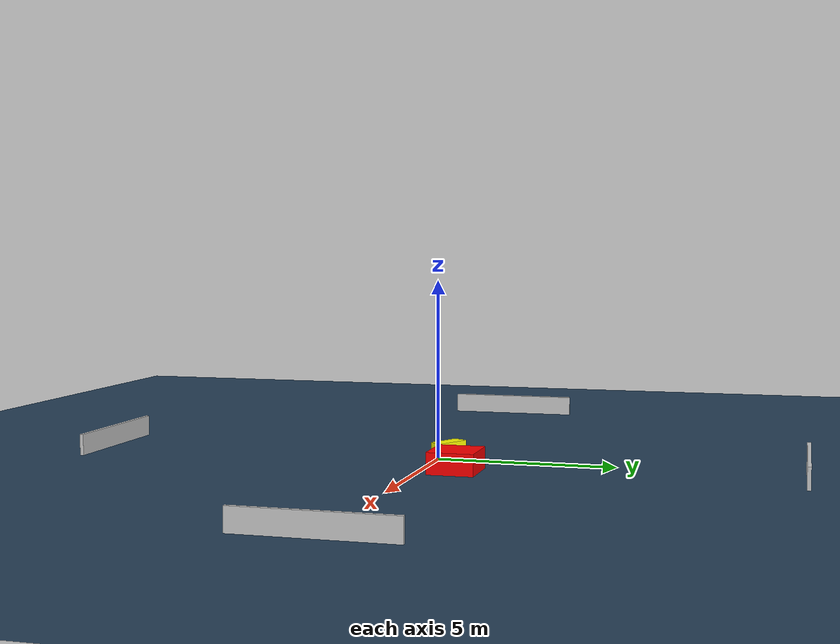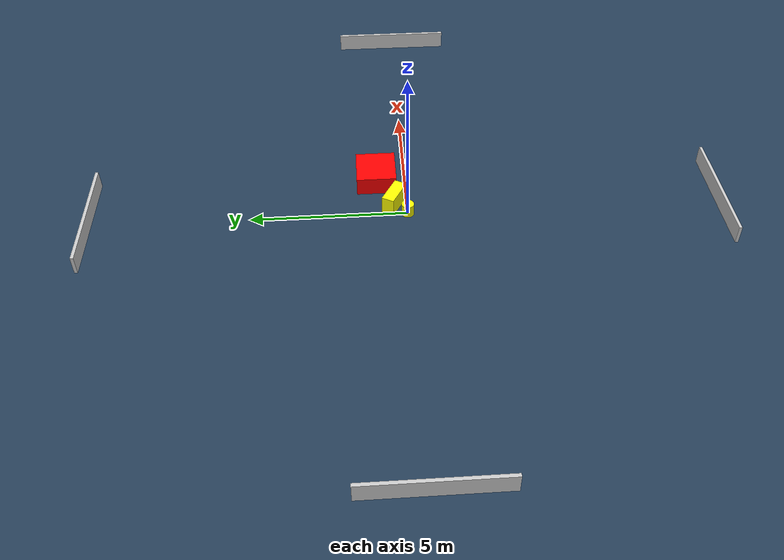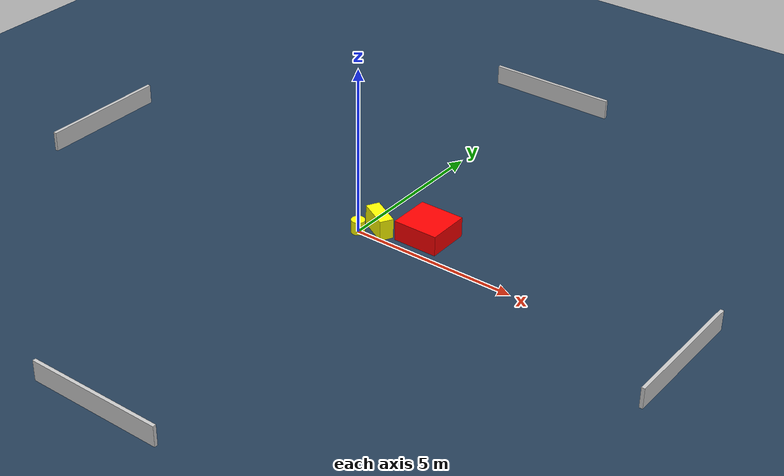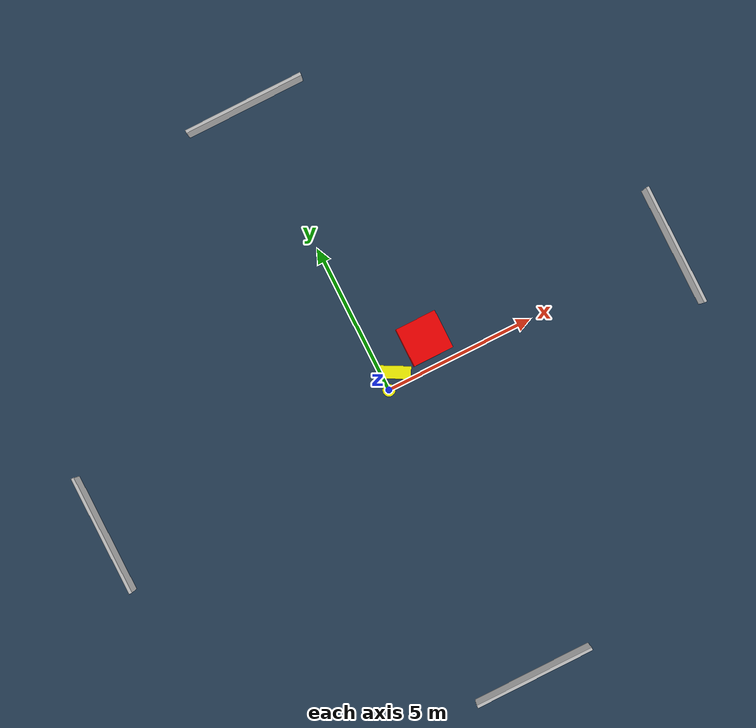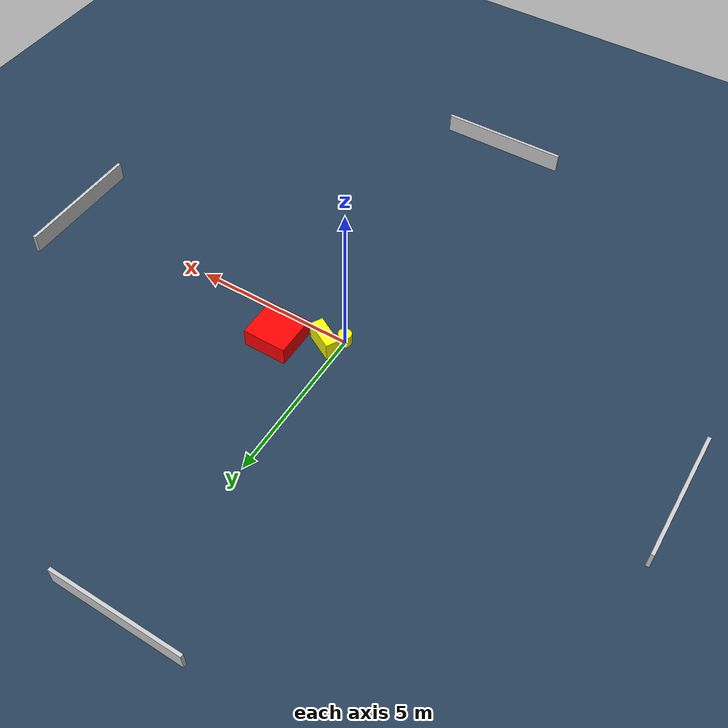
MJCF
<?xml version="1.0" ?>
<mujoco model="generated_environment">
  <option timestep="0.01" integrator="RK4" cone="elliptic"/>
  <default>
    <geom density="1"/>
  </default>
  <asset>
    <texture builtin="gradient" height="3072" name="skybox" rgb1="0.3 0.5 0.7" rgb2="0 0 0" type="skybox" width="512"/>
    <texture builtin="checker" height="300" name="groundplane" rgb1="0.2 0.3 0.4" rgb2="0.1 0.2 0.3" type="2d" width="300"/>
    <material name="groundplane" reflectance="0.2" texrepeat="5 5" texture="groundplane"/>
  </asset>
  <worldbody>
    <light dir="0 0 -1" directional="true" pos="0 0 1.5"/>
    <geom condim="3" friction="0.5 0.005 0.001" material="groundplane" name="floor" pos="0 0 0" size="0 0 0.05" type="plane"/>
    <body name="walls">
      <geom name="wall_1" condim="4" pos="-10.0 0.0 0.3" rgba="0.800000011920929 0.800000011920929 0.800000011920929 1.0" size="0.05 2.0 0.3" type="box"/>
      <geom name="wall_2" condim="4" pos="10.0 0.0 0.3" rgba="0.800000011920929 0.800000011920929 0.800000011920929 1.0" size="0.05 2.0 0.3" type="box"/>
      <geom name="wall_3" condim="4" pos="0.0 -10.0 0.3" rgba="0.800000011920929 0.800000011920929 0.800000011920929 1.0" size="2.0 0.05 0.3" type="box"/>
      <geom name="wall_4" condim="4" pos="0.0 10.0 0.3" rgba="0.800000011920929 0.800000011920929 0.800000011920929 1.0" size="2.0 0.05 0.3" type="box"/>
    </body>
    <body name="robot">
      <joint name="joint_x" type="slide" pos="0 0 0" axis="1 0 0"/>
      <joint name="joint_y" type="slide" pos="0 0 0" axis="0 1 0"/>
      <geom name="robot" type="cylinder" pos="0.0 0.0 0.2" size="0.2 0.2 0.0" mass="5.0" friction="1.0 0.005 0.0001" condim="4" rgba="1.0 1.0 0.0 1.0"/>
    </body>
    <body name="obstacle_1_movable">
      <geom name="obstacle_1_movable" condim="4" pos="0.43409154299719094 0.4058508366925591 0.3" euler="0 0 241.3197546133634" friction="0.0 0.005 0.001" rgba="1.0 1.0 0.0 1.0" size="0.20185730600510252 0.48234622647665254 0.3" type="box" mass="0.1"/>
      <joint type="free"/>
    </body>
    <body name="obstacle_2_static">
      <geom name="obstacle_2_static" condim="4" pos="1.7093633735170737 0.9407793688842847 0.3" euler="0 0 90.04465373477971" friction="0.0 0.005 0.001" rgba="1.0 0.0 0.0 1.0" size="0.6412058261665317 0.6760760658652492 0.3" type="box"/>
    </body>
  </worldbody>
  <actuator>
    <motor name="actuator_x" joint="joint_x" gear="1" ctrlrange="-1 1"/>
    <motor name="actuator_y" joint="joint_y" gear="1" ctrlrange="-1 1"/>
  </actuator>
</mujoco>
